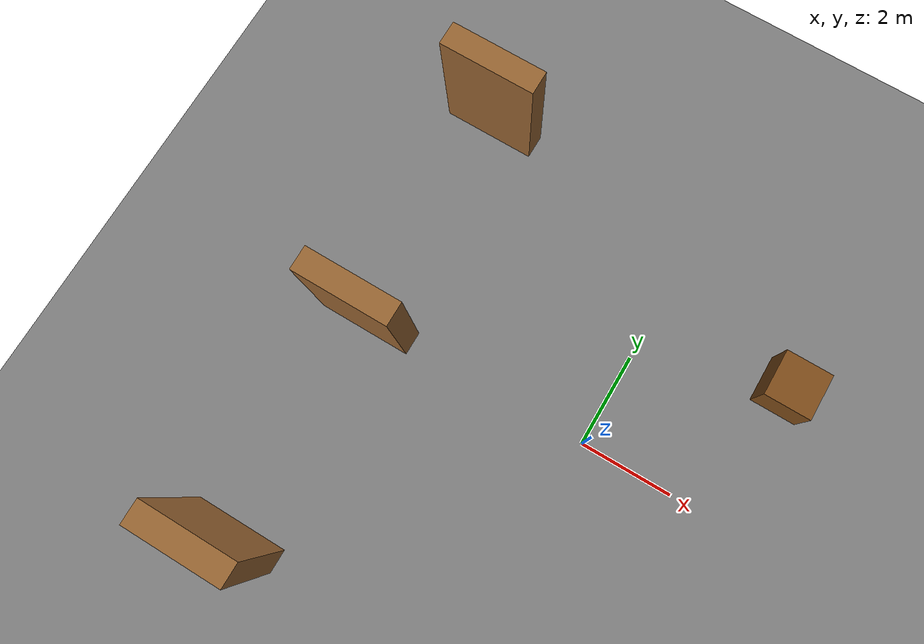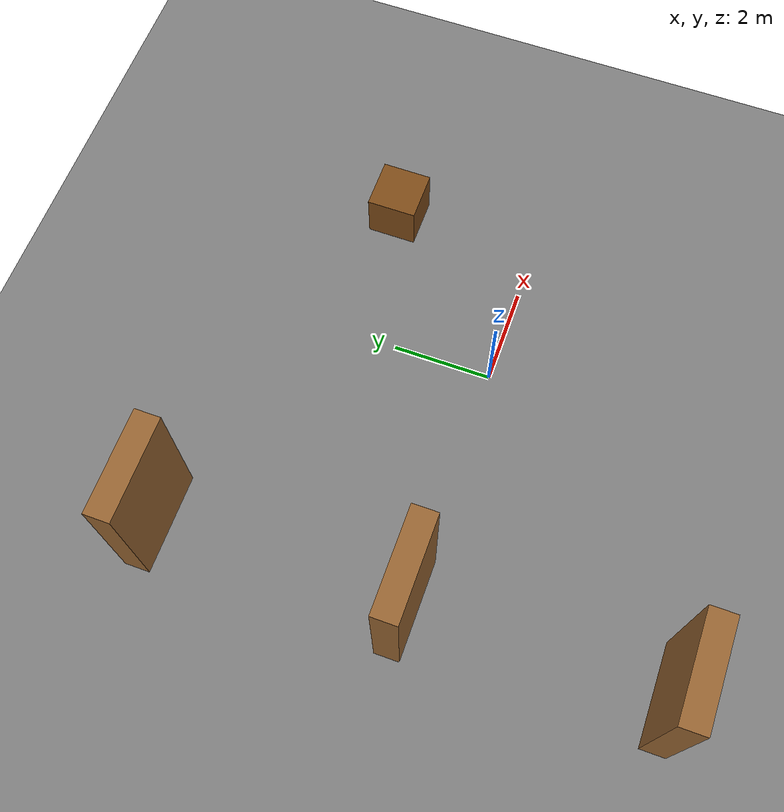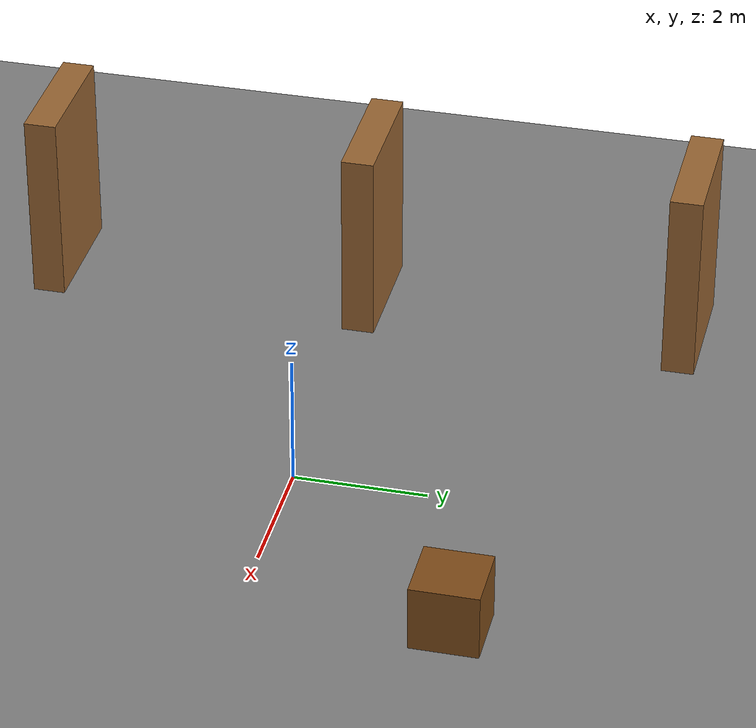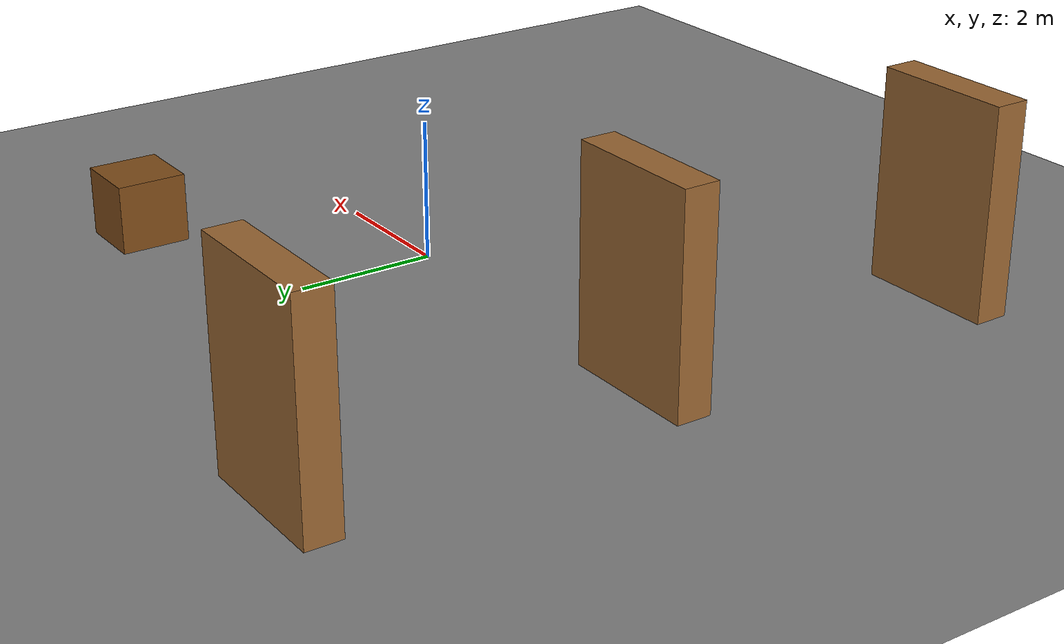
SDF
<?xml version="1.0"?>
<sdf version="1.9">
  <world name="indoor_warehouse">
    <physics type="ode">
      <max_step_size>0.001</max_step_size>
      <real_time_factor>1.0</real_time_factor>
      <real_time_update_rate>1000</real_time_update_rate>
    </physics>

    <scene>
      <ambient>0.4 0.4 0.4 1</ambient>
      <background>0.7 0.7 0.7 1</background>
      <shadows>true</shadows>
    </scene>

    <!-- Ground plane -->
    <model name="ground">
      <static>true</static>
      <pose>0 0 0 0 0 0</pose>
      <link name="ground_link">
        <collision name="ground_collision">
          <geometry>
            <plane>
              <normal>0 0 1</normal>
              <size>50 50</size>
            </plane>
          </geometry>
          <surface>
            <friction>
              <ode>
                <mu>100</mu>
                <mu2>100</mu2>
              </ode>
            </friction>
          </surface>
        </collision>
        <visual name="ground_visual">
          <geometry>
            <plane>
              <normal>0 0 1</normal>
              <size>50 50</size>
            </plane>
          </geometry>
          <material>
            <ambient>0.5 0.5 0.5 1</ambient>
            <diffuse>0.5 0.5 0.5 1</diffuse>
          </material>
        </visual>
      </link>
    </model>

    <!-- Walls -->
    <model name="walls">
      <static>true</static>
      <pose>0 0 0 0 0 0</pose>
      <link name="walls_link">
        <!-- North wall -->
        <collision name="north_wall">
          <pose>0 20 3 0 0 0</pose>
          <geometry>
            <box>
              <size>40 0.3 6</size>
            </box>
          </geometry>
        </collision>
        <!-- South wall -->
        <collision name="south_wall">
          <pose>0 -20 3 0 0 0</pose>
          <geometry>
            <box>
              <size>40 0.3 6</size>
            </box>
          </geometry>
        </collision>
        <!-- East wall -->
        <collision name="east_wall">
          <pose>20 0 3 0 0 0</pose>
          <geometry>
            <box>
              <size>0.3 40 6</size>
            </box>
          </geometry>
        </collision>
        <!-- West wall -->
        <collision name="west_wall">
          <pose>-20 0 3 0 0 0</pose>
          <geometry>
            <box>
              <size>0.3 40 6</size>
            </box>
          </geometry>
        </collision>
      </link>
    </model>

    <!-- Shelving units -->
    <model name="shelf_1">
      <static>true</static>
      <pose>-5 5 0 0 0 0</pose>
      <link name="shelf_link">
        <collision name="shelf_col">
          <pose>0 0 1.5 0 0 0</pose>
          <geometry>
            <box>
              <size>2 0.5 3</size>
            </box>
          </geometry>
        </collision>
        <visual name="shelf_vis">
          <pose>0 0 1.5 0 0 0</pose>
          <geometry>
            <box>
              <size>2 0.5 3</size>
            </box>
          </geometry>
          <material>
            <ambient>0.6 0.4 0.2 1</ambient>
          </material>
        </visual>
      </link>
    </model>

    <model name="shelf_2">
      <static>true</static>
      <pose>-5 0 0 0 0 0</pose>
      <link name="shelf_link">
        <collision name="shelf_col">
          <pose>0 0 1.5 0 0 0</pose>
          <geometry>
            <box>
              <size>2 0.5 3</size>
            </box>
          </geometry>
        </collision>
        <visual name="shelf_vis">
          <pose>0 0 1.5 0 0 0</pose>
          <geometry>
            <box>
              <size>2 0.5 3</size>
            </box>
          </geometry>
          <material>
            <ambient>0.6 0.4 0.2 1</ambient>
          </material>
        </visual>
      </link>
    </model>

    <model name="shelf_3">
      <static>true</static>
      <pose>-5 -5 0 0 0 0</pose>
      <link name="shelf_link">
        <collision name="shelf_col">
          <pose>0 0 1.5 0 0 0</pose>
          <geometry>
            <box>
              <size>2 0.5 3</size>
            </box>
          </geometry>
        </collision>
        <visual name="shelf_vis">
          <pose>0 0 1.5 0 0 0</pose>
          <geometry>
            <box>
              <size>2 0.5 3</size>
            </box>
          </geometry>
          <material>
            <ambient>0.6 0.4 0.2 1</ambient>
          </material>
        </visual>
      </link>
    </model>

    <!-- Crates -->
    <model name="crate_1">
      <static>true</static>
      <pose>3 3 0 0 0 0</pose>
      <link name="crate_link">
        <collision name="crate_col">
          <pose>0 0 0.5 0 0 0</pose>
          <geometry>
            <box>
              <size>1 1 1</size>
            </box>
          </geometry>
        </collision>
        <visual name="crate_vis">
          <pose>0 0 0.5 0 0 0</pose>
          <geometry>
            <box>
              <size>1 1 1</size>
            </box>
          </geometry>
          <material>
            <ambient>0.5 0.3 0.1 1</ambient>
          </material>
        </visual>
      </link>
    </model>

    <!-- Lighting -->
    <light type="point" name="light_1">
      <pose>0 0 8 0 0 0</pose>
      <diffuse>0.9 0.9 0.9 1</diffuse>
      <intensity>0.8</intensity>
      <attenuation_range>20</attenuation_range>
    </light>

    <!-- Sun -->
    <light type="directional" name="sun">
      <pose>10 10 20 0 0 0</pose>
      <diffuse>0.8 0.8 0.8 1</diffuse>
      <direction>-0.5 -0.5 -1</direction>
    </light>

    <!-- Plugin for ROS2 communication -->
    <plugin filename="gz-sim-physics-system" name="gz::sim::systems::Physics"/>
    <plugin filename="gz-sim-scene-broadcaster-system" name="gz::sim::systems::SceneBroadcaster"/>
  </world>
</sdf>
